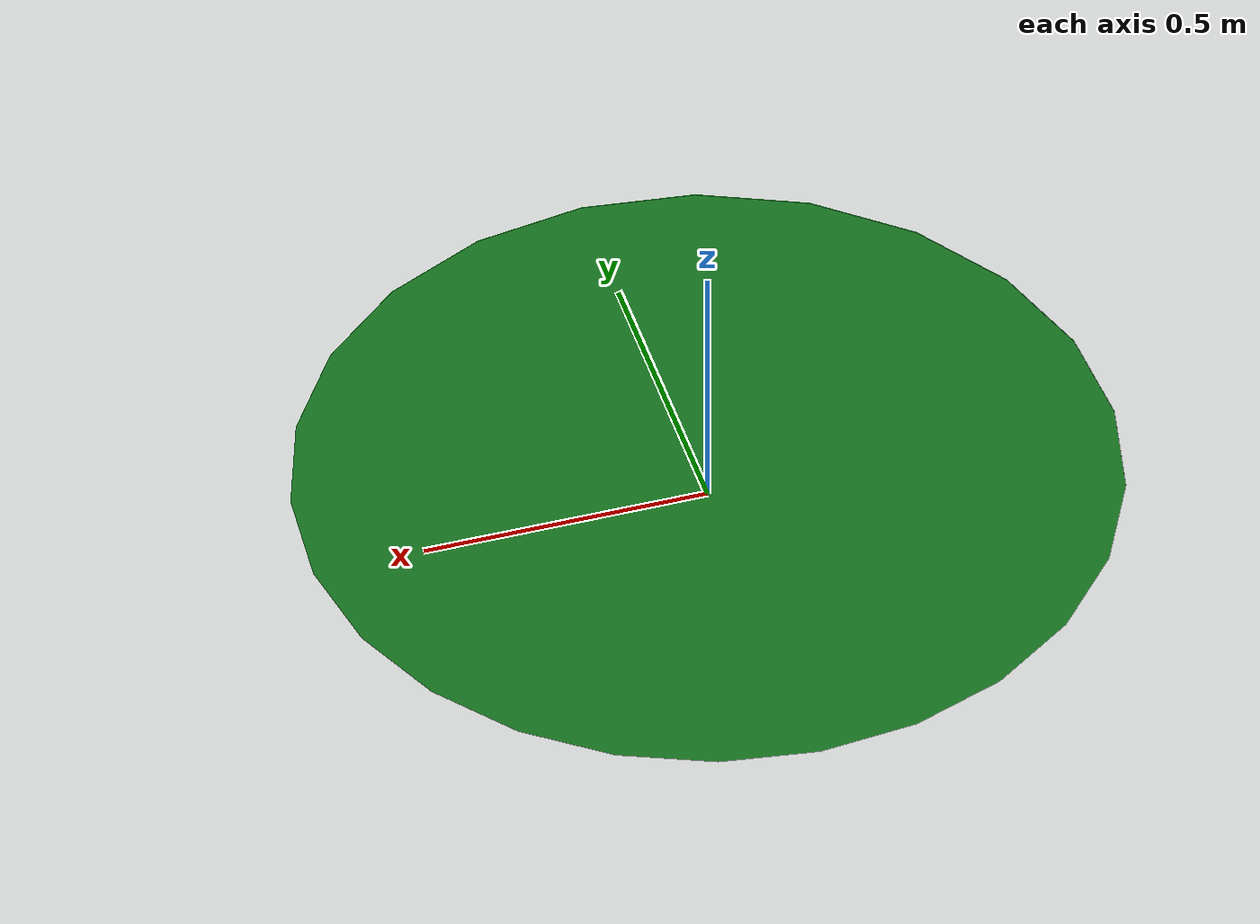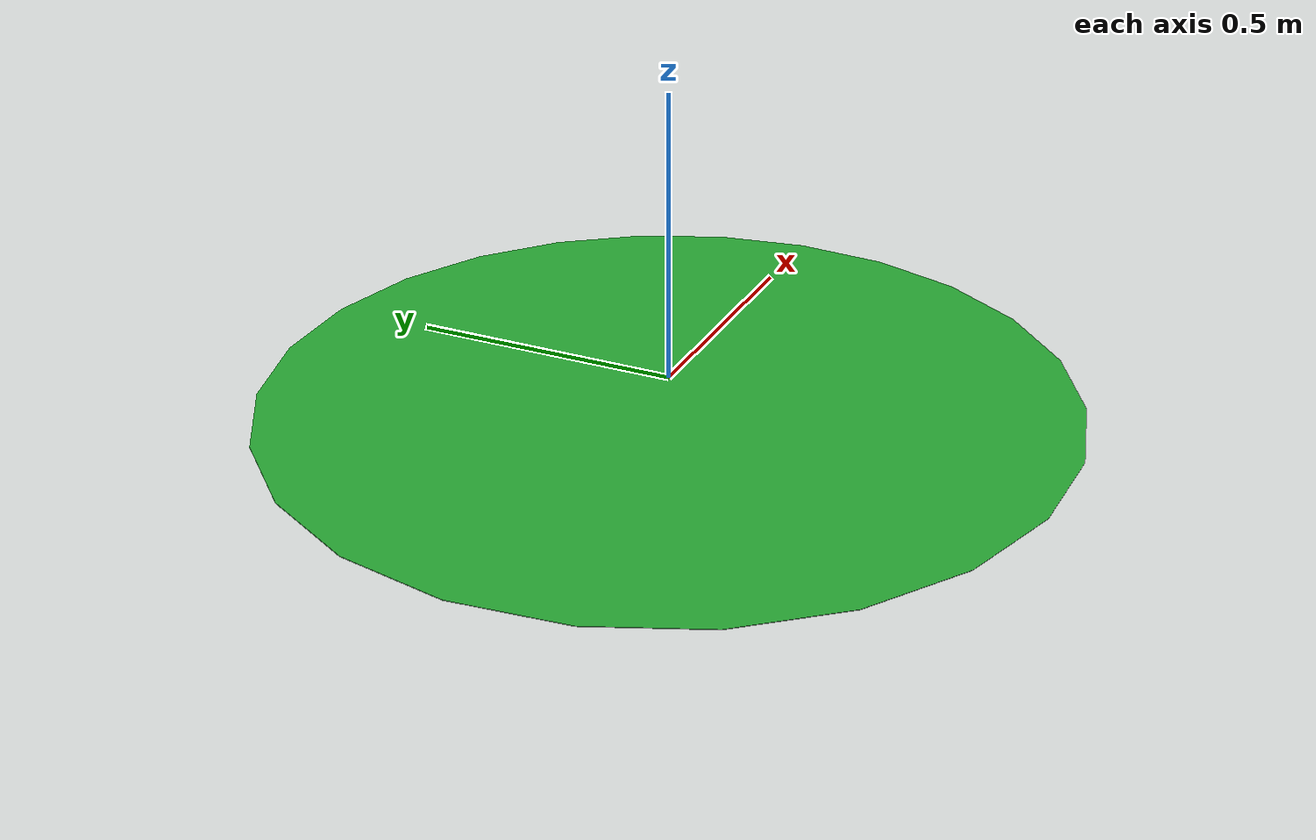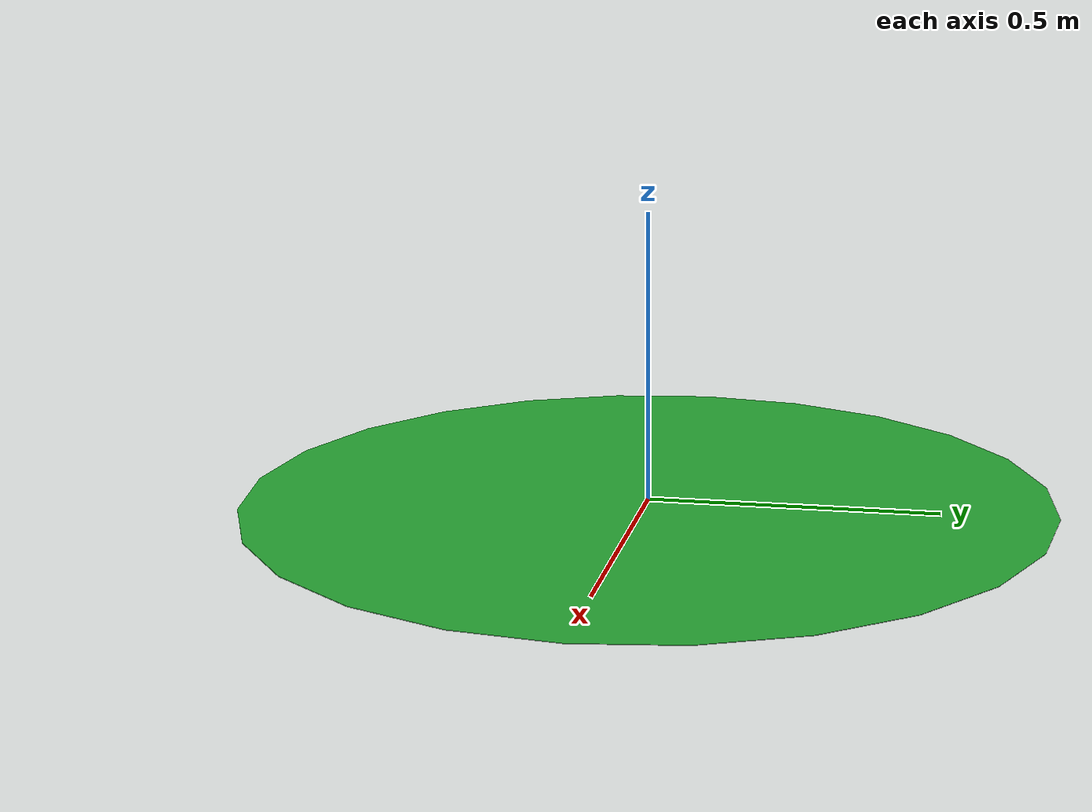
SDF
<?xml version='1.0'?>
<sdf version='1.6'>
  <model name='goal_pad'>
    <pose frame=''>0 0 0 0 -0 -1.5708</pose>
    <link name='goal_pad'>
      <visual name='goal_pad'>
        <pose frame=''>0 0 0.0005 0 -0 0</pose>
        <geometry>
          <cylinder>
            <radius>0.7</radius>
            <length>0.001</length>
          </cylinder>
        </geometry>
        <material>
          <script>
            <uri>file://media/materials/scripts/gazebo.material</uri>
            <name>Gazebo/Green</name>
          </script>
        </material>
      </visual>
      <collision name='goal_pad'>
        <pose frame=''>0 0 0.0005 0 -0 0</pose>
        <geometry>
          <cylinder>
            <radius>1.0</radius>
            <length>0.001</length>
          </cylinder>
        </geometry>
      </collision>
      <pose frame=''>0 0 0 0 -0 0</pose>
    </link>
    <static>0</static>
  </model>
</sdf>
